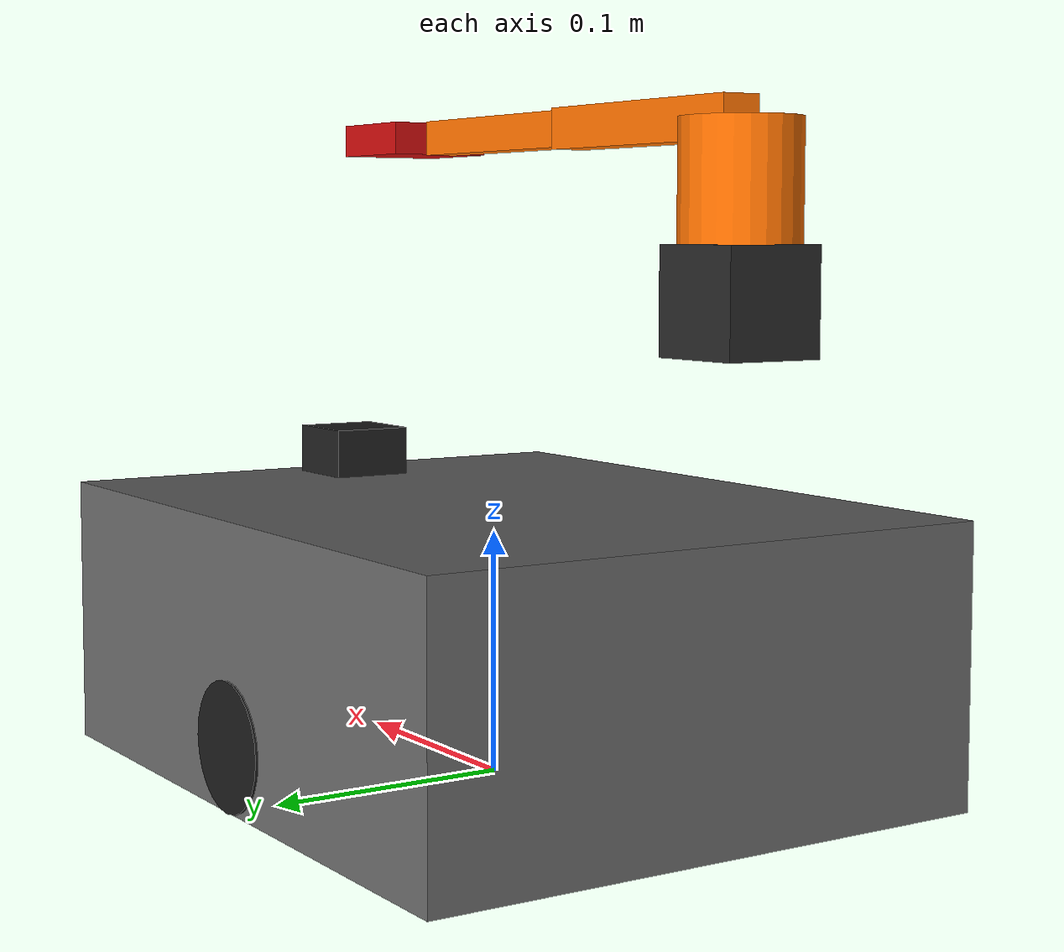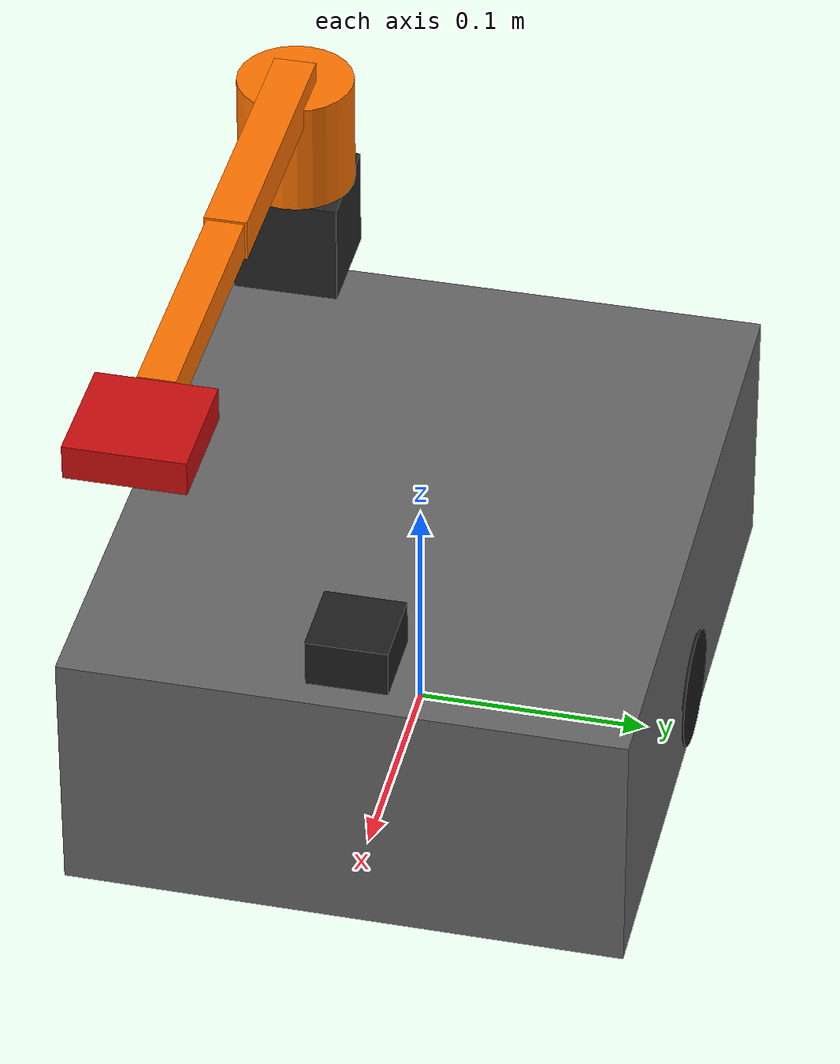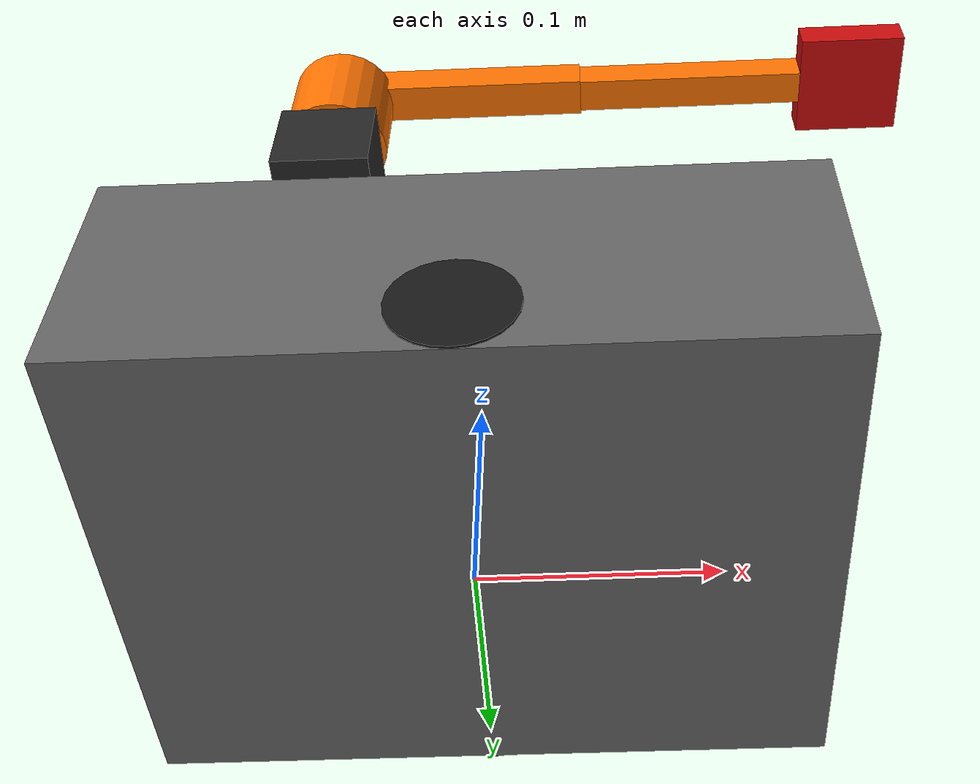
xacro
<?xml version="1.0"?>
<robot xmlns:xacro="http://www.ros.org/wiki/xacro" name="rtk2026">

  <xacro:property name="base_length"     value="0.300"/>
  <xacro:property name="base_width"      value="0.240"/>
  <xacro:property name="base_height"     value="0.113"/>
  <xacro:property name="wheel_radius"    value="0.02585"/>  <!-- 51.7 мм / 2 -->
  <xacro:property name="wheel_width"     value="0.030"/>
  <xacro:property name="wheel_sep"       value="0.2123"/>   <!-- между центрами колёс -->
  <xacro:property name="base_z_offset"   value="0.0565"/>   <!-- центр корпуса над полом -->

  <!-- ── base_footprint — точка на полу под роботом ── -->
  <xacro:include filename="mearm_macro.xacro"/>

  <link name="base_footprint"/>

  <joint name="base_footprint_joint" type="fixed">
    <parent link="base_footprint"/>
    <child link="base_link"/>
    <origin xyz="0 0 ${base_z_offset}" rpy="0 0 0"/>
  </joint>

  <!-- ── base_link — центр корпуса ── -->
  <link name="base_link">
    <visual>
      <geometry>
        <box size="${base_length} ${base_width} ${base_height}"/>
      </geometry>
      <material name="base_grey">
        <color rgba="0.4 0.4 0.4 1"/>
      </material>
    </visual>
    <collision>
      <geometry>
        <box size="${base_length} ${base_width} ${base_height}"/>
      </geometry>
    </collision>
    <inertial>
      <mass value="5.0"/>
      <inertia ixx="0.05" ixy="0" ixz="0" iyy="0.05" iyz="0" izz="0.05"/>
    </inertial>
  </link>

  <!-- ── левое колесо ── -->
  <joint name="left_wheel_joint" type="continuous">
    <parent link="base_link"/>
    <child link="left_wheel_link"/>
    <origin xyz="0 ${wheel_sep/2} ${-base_z_offset + wheel_radius}" rpy="-1.5708 0 0"/>
    <axis xyz="0 0 1"/>
  </joint>
  <link name="left_wheel_link">
    <visual>
      <geometry>
        <cylinder radius="${wheel_radius}" length="${wheel_width}"/>
      </geometry>
      <material name="wheel_black">
        <color rgba="0.1 0.1 0.1 1"/>
      </material>
    </visual>
    <collision>
      <geometry>
        <cylinder radius="${wheel_radius}" length="${wheel_width}"/>
      </geometry>
    </collision>
    <inertial>
      <mass value="0.3"/>
      <inertia ixx="0.001" ixy="0" ixz="0" iyy="0.001" iyz="0" izz="0.001"/>
    </inertial>
  </link>

  <!-- ── правое колесо ── -->
  <joint name="right_wheel_joint" type="continuous">
    <parent link="base_link"/>
    <child link="right_wheel_link"/>
    <origin xyz="0 ${-wheel_sep/2} ${-base_z_offset + wheel_radius}" rpy="-1.5708 0 0"/>
    <axis xyz="0 0 1"/>
  </joint>
  <link name="right_wheel_link">
    <visual>
      <geometry>
        <cylinder radius="${wheel_radius}" length="${wheel_width}"/>
      </geometry>
      <material name="wheel_black"/>
    </visual>
    <collision>
      <geometry>
        <cylinder radius="${wheel_radius}" length="${wheel_width}"/>
      </geometry>
    </collision>
    <inertial>
      <mass value="0.3"/>
      <inertia ixx="0.001" ixy="0" ixz="0" iyy="0.001" iyz="0" izz="0.001"/>
    </inertial>
  </link>

  <!-- ── лидар — спереди сверху корпуса ── -->
  <joint name="lidar_joint" type="fixed">
    <parent link="base_link"/>
    <child link="lidar_link"/>
    <origin xyz="0.15 0 0.08" rpy="0 0 0"/>
  </joint>
  <link name="lidar_link"/>

  <!-- ── фронтальная камера ── -->
  <joint name="camera_joint" type="fixed">
    <parent link="base_link"/>
    <child link="camera_link"/>
    <origin xyz="0.12 0 0.06" rpy="0 0 0"/>
  </joint>
  <link name="camera_link">
    <visual>
      <geometry>
        <box size="0.035 0.035 0.035"/>
      </geometry>
      <material name="camera_black">
        <color rgba="0.12 0.12 0.12 1"/>
      </material>
    </visual>
    <collision>
      <geometry>
        <box size="0.035 0.035 0.035"/>
      </geometry>
    </collision>
    <inertial>
      <mass value="0.05"/>
      <inertia ixx="0.0001" ixy="0" ixz="0" iyy="0.0001" iyz="0" izz="0.0001"/>
    </inertial>
  </link>

  <!-- ── IMU ── -->
  <joint name="imu_joint" type="fixed">
    <parent link="base_link"/>
    <child link="imu_link"/>
    <origin xyz="0 0 0.04" rpy="0 0 0"/>
  </joint>
  <link name="imu_link"/>

  <xacro:mearm parent="base_link" mount_xyz="-0.07 -0.07 0.138"/>

</robot>

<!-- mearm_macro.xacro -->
<robot xmlns:xacro="http://www.ros.org/wiki/xacro">
  <xacro:macro name="mearm" params="parent mount_xyz:='-0.07 -0.07 0.138'">
    <material name="mearm_dark"><color rgba="0.15 0.15 0.15 1"/></material>
    <material name="mearm_orange"><color rgba="1.0 0.45 0.0 1"/></material>
    <material name="mearm_red"><color rgba="0.8 0.05 0.05 1"/></material>

    <link name="mearm_mount_link">
      <visual><geometry><box size="0.045 0.045 0.045"/></geometry><material name="mearm_dark"/></visual>
      <collision><geometry><box size="0.045 0.045 0.045"/></geometry></collision>
      <inertial>
        <mass value="0.05"/>
        <inertia ixx="0.00003" ixy="0" ixz="0" iyy="0.00003" iyz="0" izz="0.00003"/>
      </inertial>
    </link>
    <joint name="mearm_mount_joint" type="fixed">
      <parent link="${parent}"/>
      <child link="mearm_mount_link"/>
      <origin xyz="${mount_xyz}" rpy="0 0 0"/>
    </joint>

    <link name="mearm_shoulder_link">
      <visual><origin xyz="0 0 0.025"/><geometry><cylinder radius="0.025" length="0.05"/></geometry><material name="mearm_orange"/></visual>
      <collision><origin xyz="0 0 0.025"/><geometry><cylinder radius="0.025" length="0.05"/></geometry></collision>
      <inertial>
        <origin xyz="0 0 0.025"/>
        <mass value="0.08"/>
        <inertia ixx="0.00003" ixy="0" ixz="0" iyy="0.00003" iyz="0" izz="0.00003"/>
      </inertial>
    </link>
    <joint name="joint_0" type="revolute">
      <parent link="mearm_mount_link"/>
      <child link="mearm_shoulder_link"/>
      <origin xyz="0 0 0.0225"/>
      <axis xyz="0 0 1"/>
      <limit lower="-0.7854" upper="0.7854" effort="2.0" velocity="1.5"/>
    </joint>

    <link name="mearm_upper_arm_link">
      <visual><origin xyz="0.06 0 0"/><geometry><box size="0.12 0.018 0.018"/></geometry><material name="mearm_orange"/></visual>
      <collision><origin xyz="0.06 0 0"/><geometry><box size="0.12 0.018 0.018"/></geometry></collision>
      <inertial>
        <origin xyz="0.06 0 0"/>
        <mass value="0.06"/>
        <inertia ixx="0.000004" ixy="0" ixz="0" iyy="0.000075" iyz="0" izz="0.000075"/>
      </inertial>
    </link>
    <joint name="joint_1" type="revolute">
      <parent link="mearm_shoulder_link"/>
      <child link="mearm_upper_arm_link"/>
      <origin xyz="0 0 0.05"/>
      <axis xyz="0 1 0"/>
      <limit lower="-1.5708" upper="0.9948" effort="2.0" velocity="1.5"/>
    </joint>

    <link name="mearm_forearm_link">
      <visual><origin xyz="0.055 0 0"/><geometry><box size="0.11 0.016 0.016"/></geometry><material name="mearm_orange"/></visual>
      <collision><origin xyz="0.055 0 0"/><geometry><box size="0.11 0.016 0.016"/></geometry></collision>
      <inertial>
        <origin xyz="0.055 0 0"/>
        <mass value="0.05"/>
        <inertia ixx="0.000003" ixy="0" ixz="0" iyy="0.000052" iyz="0" izz="0.000052"/>
      </inertial>
    </link>
    <joint name="joint_2" type="revolute">
      <parent link="mearm_upper_arm_link"/>
      <child link="mearm_forearm_link"/>
      <origin xyz="0.12 0 0"/>
      <axis xyz="0 1 0"/>
      <limit lower="0.0" upper="1.5708" effort="2.0" velocity="1.5"/>
    </joint>

    <link name="mearm_gripper_link">
      <visual><origin xyz="0.025 0 0"/><geometry><box size="0.05 0.05 0.015"/></geometry><material name="mearm_red"/></visual>
      <collision><origin xyz="0.025 0 0"/><geometry><box size="0.05 0.05 0.015"/></geometry></collision>
      <inertial>
        <origin xyz="0.025 0 0"/>
        <mass value="0.04"/>
        <inertia ixx="0.000009" ixy="0" ixz="0" iyy="0.000009" iyz="0" izz="0.000017"/>
      </inertial>
    </link>
    <joint name="joint_3" type="revolute">
      <parent link="mearm_forearm_link"/>
      <child link="mearm_gripper_link"/>
      <origin xyz="0.11 0 0"/>
      <axis xyz="0 1 0"/>
      <limit lower="0.0" upper="1.5708" effort="1.0" velocity="2.0"/>
    </joint>
  </xacro:macro>
</robot>
